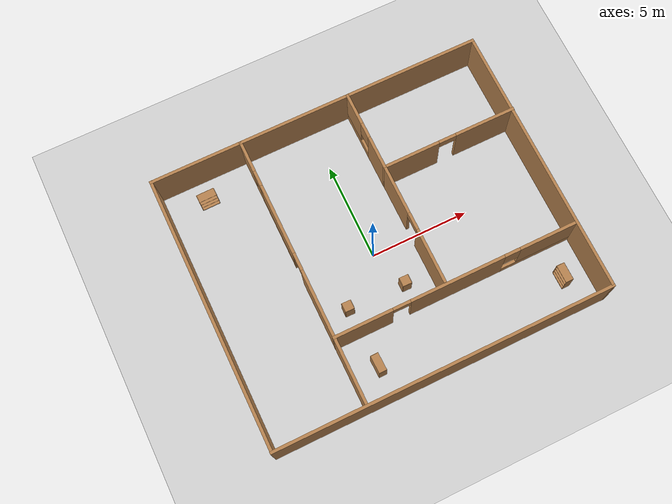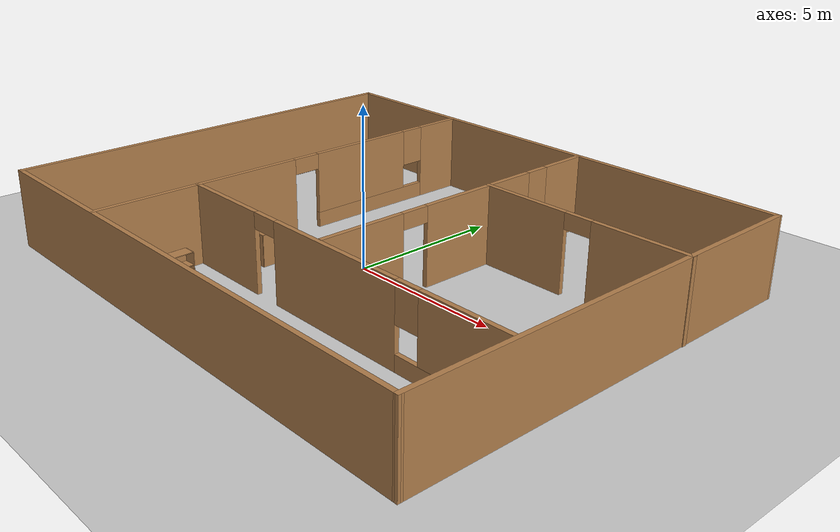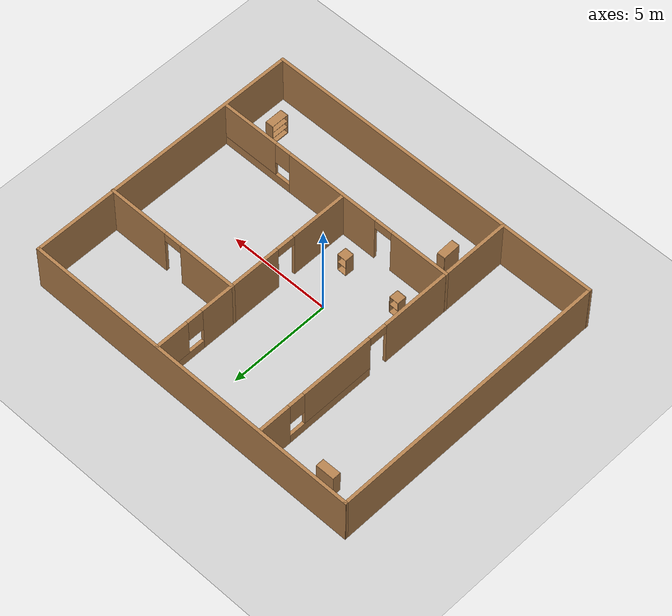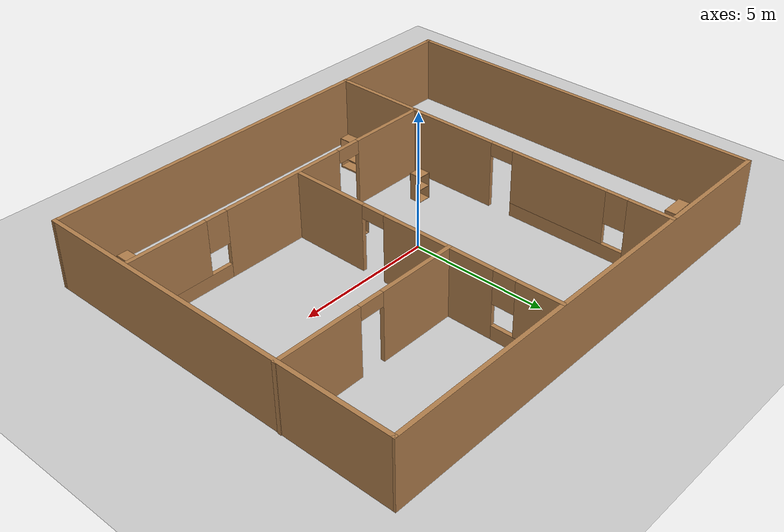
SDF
<sdf version="1.4">
 <world name="default">
  <light name="sun" type="directional">
   <pose>0 0 10 0 -0 0</pose>
   <diffuse>0.8 0.8 0.8 1</diffuse>
   <specular>0.2 0.2 0.2 1</specular>
   <attenuation>
    <range>1000</range>
    <constant>0.9</constant>
    <linear>0.01</linear>
    <quadratic>0.001</quadratic>
   </attenuation>
   <direction>-0.5 0.1 -0.9</direction>
   <spot><inner_angle>0</inner_angle><outer_angle>0</outer_angle><falloff>0</falloff></spot>
  </light>
  <model name="ground_plane">
   <static>1</static>
   <link name="link">
    <collision name="collision">
     <geometry><plane><normal>0 0 1</normal><size>100 100</size></plane></geometry>
     <surface>
      <contact><collide_bitmask>65535</collide_bitmask></contact>
      <friction><ode><mu>100</mu><mu2>50</mu2></ode></friction>
     </surface>
    </collision>
    <visual name="visual">
     <cast_shadows>0</cast_shadows>
     <geometry><plane><normal>0 0 1</normal><size>100 100</size></plane></geometry>
     <material>
      <script><uri>file://media/materials/scripts/gazebo.material</uri><name>Gazebo/Grey</name></script>
     </material>
    </visual>
   </link>
  </model>
  <gravity>0 0 -9.8</gravity>
  <magnetic_field>6e-06 2.3e-05 -4.2e-05</magnetic_field>
  <atmosphere type="adiabatic"/>
  <physics type="ode">
   <max_step_size>0.001</max_step_size>
   <real_time_factor>1</real_time_factor>
   <real_time_update_rate>1000</real_time_update_rate>
  </physics>
  <scene><ambient>0.4 0.4 0.4 1</ambient><background>0.7 0.7 0.7 1</background><shadows>1</shadows></scene>
  <spherical_coordinates>
   <surface_model>EARTH_WGS84</surface_model>
   <latitude_deg>0</latitude_deg>
   <longitude_deg>0</longitude_deg>
   <elevation>0</elevation>
   <heading_deg>0</heading_deg>
  </spherical_coordinates>
  <model name="Class">
   <pose>0.38162 0.217526 0 0 -0 0</pose>
   <link name="Wall_12">
    <collision name="Wall_12_Collision">
     <geometry><box><size>14 0.15 2.5</size></box></geometry>
     <pose>0 0 1.25 0 -0 0</pose>
    </collision>
    <visual name="Wall_12_Visual">
     <pose>0 0 1.25 0 -0 0</pose>
     <geometry><box><size>14 0.15 2.5</size></box></geometry>
     <material>
      <script><uri>file://media/materials/scripts/gazebo.material</uri><name>Gazebo/Wood</name></script>
      <ambient>1 1 1 1</ambient>
     </material>
     <meta><layer>0</layer></meta>
    </visual>
    <pose>-8.54112 0.004765 0 0 -0 -1.5708</pose>
   </link>
   <link name="Wall_14">
    <collision name="Wall_14_Collision">
     <geometry><box><size>17.2148 0.15 2.5</size></box></geometry>
     <pose>0 0 1.25 0 -0 0</pose>
    </collision>
    <visual name="Wall_14_Visual">
     <pose>0 0 1.25 0 -0 0</pose>
     <geometry><box><size>17.2148 0.15 2.5</size></box></geometry>
     <material>
      <script><uri>file://media/materials/scripts/gazebo.material</uri><name>Gazebo/Wood</name></script>
      <ambient>1 1 1 1</ambient>
     </material>
     <meta><layer>0</layer></meta>
    </visual>
    <pose>-0.008709 6.93559 0 0 -0 -0.000665</pose>
   </link>
   <link name="Wall_15">
    <collision name="Wall_15_Collision">
     <geometry><box><size>14.0096 0.15 2.5</size></box></geometry>
     <pose>0 0 1.25 0 -0 0</pose>
    </collision>
    <visual name="Wall_15_Visual">
     <pose>0 0 1.25 0 -0 0</pose>
     <geometry><box><size>14.0096 0.15 2.5</size></box></geometry>
     <material>
      <script><uri>file://media/materials/scripts/gazebo.material</uri><name>Gazebo/Wood</name></script>
      <ambient>1 1 1 1</ambient>
     </material>
     <meta><layer>0</layer></meta>
    </visual>
    <pose>8.53544 -0.011384 0 0 -0 -1.5691</pose>
   </link>
   <link name="Wall_16">
    <collision name="Wall_16_Collision">
     <geometry><box><size>17.25 0.15 2.5</size></box></geometry>
     <pose>0 0 1.25 0 -0 0</pose>
    </collision>
    <visual name="Wall_16_Visual">
     <pose>0 0 1.25 0 -0 0</pose>
     <geometry><box><size>17.25 0.15 2.5</size></box></geometry>
     <material>
      <script><uri>file://media/materials/scripts/gazebo.material</uri><name>Gazebo/Wood</name></script>
      <ambient>1 1 1 1</ambient>
     </material>
     <meta><layer>0</layer></meta>
    </visual>
    <pose>-0.00282 -6.94119 0 0 -0 3.14159</pose>
   </link>
   <link name="Wall_18">
    <pose>-3.93699 -0.002974 0 0 -0 -1.5708</pose>
    <visual name="Wall_18_Visual_0">
     <pose>-6.1651 0 1.25 0 -0 0</pose>
     <geometry><box><size>1.66979 0.15 2.5</size></box></geometry>
     <material>
      <script><uri>file://media/materials/scripts/gazebo.material</uri><name>Gazebo/Wood</name></script>
      <ambient>1 1 1 1</ambient>
     </material>
     <meta><layer>0</layer></meta>
    </visual>
    <collision name="Wall_18_Collision_0">
     <geometry><box><size>1.66979 0.15 2.5</size></box></geometry>
     <pose>-6.1651 0 1.25 0 -0 0</pose>
    </collision>
    <visual name="Wall_18_Visual_1">
     <pose>3.5267 0 1.25 0 -0 0</pose>
     <geometry><box><size>6.94661 0.15 2.5</size></box></geometry>
     <material>
      <script><uri>file://media/materials/scripts/gazebo.material</uri><name>Gazebo/Wood</name></script>
      <ambient>1 1 1 1</ambient>
     </material>
     <meta><layer>0</layer></meta>
    </visual>
    <collision name="Wall_18_Collision_1">
     <geometry><box><size>6.94661 0.15 2.5</size></box></geometry>
     <pose>3.5267 0 1.25 0 -0 0</pose>
    </collision>
    <visual name="Wall_18_Visual_2">
     <pose>-3.08841 0 0.25 0 -0 0</pose>
     <geometry><box><size>4.4836 0.15 0.5</size></box></geometry>
     <material>
      <script><uri>file://media/materials/scripts/gazebo.material</uri><name>Gazebo/Wood</name></script>
      <ambient>1 1 1 1</ambient>
     </material>
     <meta><layer>0</layer></meta>
    </visual>
    <collision name="Wall_18_Collision_2">
     <geometry><box><size>4.4836 0.15 0.5</size></box></geometry>
     <pose>-3.08841 0 0.25 0 -0 0</pose>
    </collision>
    <visual name="Wall_18_Visual_3">
     <pose>-2.68841 0 1.5 0 -0 0</pose>
     <geometry><box><size>3.6836 0.15 2</size></box></geometry>
     <material>
      <script><uri>file://media/materials/scripts/gazebo.material</uri><name>Gazebo/Wood</name></script>
      <ambient>1 1 1 1</ambient>
     </material>
     <meta><layer>0</layer></meta>
    </visual>
    <collision name="Wall_18_Collision_3">
     <geometry><box><size>3.6836 0.15 2</size></box></geometry>
     <pose>-2.68841 0 1.5 0 -0 0</pose>
    </collision>
    <visual name="Wall_18_Visual_4">
     <pose>-4.93021 0 1.9 0 -0 0</pose>
     <geometry><box><size>0.8 0.15 1.2</size></box></geometry>
     <material>
      <script><uri>file://media/materials/scripts/gazebo.material</uri><name>Gazebo/Wood</name></script>
      <ambient>1 1 1 1</ambient>
     </material>
     <meta><layer>0</layer></meta>
    </visual>
    <collision name="Wall_18_Collision_4">
     <geometry><box><size>0.8 0.15 1.2</size></box></geometry>
     <pose>-4.93021 0 1.9 0 -0 0</pose>
    </collision>
    <visual name="Wall_18_Visual_5">
     <pose>-0.39661 0 2.25 0 -0 0</pose>
     <geometry><box><size>0.9 0.15 0.5</size></box></geometry>
     <material>
      <script><uri>file://media/materials/scripts/gazebo.material</uri><name>Gazebo/Wood</name></script>
      <ambient>1 1 1 1</ambient>
     </material>
     <meta><layer>0</layer></meta>
    </visual>
    <collision name="Wall_18_Collision_5">
     <geometry><box><size>0.9 0.15 0.5</size></box></geometry>
     <pose>-0.39661 0 2.25 0 -0 0</pose>
    </collision>
   </link>
   <link name="Wall_20">
    <pose>5.12782 2.82354 0 0 -0 3.14159</pose>
    <visual name="Wall_20_Visual_0">
     <pose>-1.92806 0 1.25 0 -0 0</pose>
     <geometry><box><size>3.14389 0.15 2.5</size></box></geometry>
     <material>
      <script><uri>file://media/materials/scripts/gazebo.material</uri><name>Gazebo/Wood</name></script>
      <ambient>1 1 1 1</ambient>
     </material>
     <meta><layer>0</layer></meta>
    </visual>
    <collision name="Wall_20_Collision_0">
     <geometry><box><size>3.14389 0.15 2.5</size></box></geometry>
     <pose>-1.92806 0 1.25 0 -0 0</pose>
    </collision>
    <visual name="Wall_20_Visual_1">
     <pose>2.02194 0 1.25 0 -0 0</pose>
     <geometry><box><size>2.95611 0.15 2.5</size></box></geometry>
     <material>
      <script><uri>file://media/materials/scripts/gazebo.material</uri><name>Gazebo/Wood</name></script>
      <ambient>1 1 1 1</ambient>
     </material>
     <meta><layer>0</layer></meta>
    </visual>
    <collision name="Wall_20_Collision_1">
     <geometry><box><size>2.95611 0.15 2.5</size></box></geometry>
     <pose>2.02194 0 1.25 0 -0 0</pose>
    </collision>
    <visual name="Wall_20_Visual_2">
     <pose>0.093886 0 2.25 0 -0 0</pose>
     <geometry><box><size>0.9 0.15 0.5</size></box></geometry>
     <material>
      <script><uri>file://media/materials/scripts/gazebo.material</uri><name>Gazebo/Wood</name></script>
      <ambient>1 1 1 1</ambient>
     </material>
     <meta><layer>0</layer></meta>
    </visual>
    <collision name="Wall_20_Collision_2">
     <geometry><box><size>0.9 0.15 0.5</size></box></geometry>
     <pose>0.093886 0 2.25 0 -0 0</pose>
    </collision>
   </link>
   <link name="Wall_21">
    <pose>1.70282 4.87354 0 0 -0 1.5708</pose>
    <visual name="Wall_21_Visual_0">
     <pose>-1.24217 0 1.25 0 -0 0</pose>
     <geometry><box><size>1.76566 0.15 2.5</size></box></geometry>
     <material>
      <script><uri>file://media/materials/scripts/gazebo.material</uri><name>Gazebo/Wood</name></script>
      <ambient>1 1 1 1</ambient>
     </material>
     <meta><layer>0</layer></meta>
    </visual>
    <collision name="Wall_21_Collision_0">
     <geometry><box><size>1.76566 0.15 2.5</size></box></geometry>
     <pose>-1.24217 0 1.25 0 -0 0</pose>
    </collision>
    <visual name="Wall_21_Visual_1">
     <pose>0.882828 0 0.25 0 -0 0</pose>
     <geometry><box><size>2.48434 0.15 0.5</size></box></geometry>
     <material>
      <script><uri>file://media/materials/scripts/gazebo.material</uri><name>Gazebo/Wood</name></script>
      <ambient>1 1 1 1</ambient>
     </material>
     <meta><layer>0</layer></meta>
    </visual>
    <collision name="Wall_21_Collision_1">
     <geometry><box><size>2.48434 0.15 0.5</size></box></geometry>
     <pose>0.882828 0 0.25 0 -0 0</pose>
    </collision>
    <visual name="Wall_21_Visual_2">
     <pose>1.28283 0 1.5 0 -0 0</pose>
     <geometry><box><size>1.68434 0.15 2</size></box></geometry>
     <material>
      <script><uri>file://media/materials/scripts/gazebo.material</uri><name>Gazebo/Wood</name></script>
      <ambient>1 1 1 1</ambient>
     </material>
     <meta><layer>0</layer></meta>
    </visual>
    <collision name="Wall_21_Collision_2">
     <geometry><box><size>1.68434 0.15 2</size></box></geometry>
     <pose>1.28283 0 1.5 0 -0 0</pose>
    </collision>
    <visual name="Wall_21_Visual_3">
     <pose>0.040657 0 1.9 0 -0 0</pose>
     <geometry><box><size>0.8 0.15 1.2</size></box></geometry>
     <material>
      <script><uri>file://media/materials/scripts/gazebo.material</uri><name>Gazebo/Wood</name></script>
      <ambient>1 1 1 1</ambient>
     </material>
     <meta><layer>0</layer></meta>
    </visual>
    <collision name="Wall_21_Collision_3">
     <geometry><box><size>0.8 0.15 1.2</size></box></geometry>
     <pose>0.040657 0 1.9 0 -0 0</pose>
    </collision>
   </link>
   <link name="Wall_23">
    <pose>2.23129 -3.54651 0 0 -0 0</pose>
    <visual name="Wall_23_Visual_0">
     <pose>-4.74148 0 1.25 0 -0 0</pose>
     <geometry><box><size>3.01705 0.15 2.5</size></box></geometry>
     <material>
      <script><uri>file://media/materials/scripts/gazebo.material</uri><name>Gazebo/Wood</name></script>
      <ambient>1 1 1 1</ambient>
     </material>
     <meta><layer>0</layer></meta>
    </visual>
    <collision name="Wall_23_Collision_0">
     <geometry><box><size>3.01705 0.15 2.5</size></box></geometry>
     <pose>-4.74148 0 1.25 0 -0 0</pose>
    </collision>
    <visual name="Wall_23_Visual_1">
     <pose>0.091527 0 1.25 0 -0 0</pose>
     <geometry><box><size>4.84896 0.15 2.5</size></box></geometry>
     <material>
      <script><uri>file://media/materials/scripts/gazebo.material</uri><name>Gazebo/Wood</name></script>
      <ambient>1 1 1 1</ambient>
     </material>
     <meta><layer>0</layer></meta>
    </visual>
    <collision name="Wall_23_Collision_1">
     <geometry><box><size>4.84896 0.15 2.5</size></box></geometry>
     <pose>0.091527 0 1.25 0 -0 0</pose>
    </collision>
    <visual name="Wall_23_Visual_2">
     <pose>4.383 0 0.25 0 -0 0</pose>
     <geometry><box><size>3.73399 0.15 0.5</size></box></geometry>
     <material>
      <script><uri>file://media/materials/scripts/gazebo.material</uri><name>Gazebo/Wood</name></script>
      <ambient>1 1 1 1</ambient>
     </material>
     <meta><layer>0</layer></meta>
    </visual>
    <collision name="Wall_23_Collision_2">
     <geometry><box><size>3.73399 0.15 0.5</size></box></geometry>
     <pose>4.383 0 0.25 0 -0 0</pose>
    </collision>
    <visual name="Wall_23_Visual_3">
     <pose>4.783 0 1.5 0 -0 0</pose>
     <geometry><box><size>2.93399 0.15 2</size></box></geometry>
     <material>
      <script><uri>file://media/materials/scripts/gazebo.material</uri><name>Gazebo/Wood</name></script>
      <ambient>1 1 1 1</ambient>
     </material>
     <meta><layer>0</layer></meta>
    </visual>
    <collision name="Wall_23_Collision_3">
     <geometry><box><size>2.93399 0.15 2</size></box></geometry>
     <pose>4.783 0 1.5 0 -0 0</pose>
    </collision>
    <visual name="Wall_23_Visual_4">
     <pose>2.91601 0 1.9 0 -0 0</pose>
     <geometry><box><size>0.8 0.15 1.2</size></box></geometry>
     <material>
      <script><uri>file://media/materials/scripts/gazebo.material</uri><name>Gazebo/Wood</name></script>
      <ambient>1 1 1 1</ambient>
     </material>
     <meta><layer>0</layer></meta>
    </visual>
    <collision name="Wall_23_Collision_4">
     <geometry><box><size>0.8 0.15 1.2</size></box></geometry>
     <pose>2.91601 0 1.9 0 -0 0</pose>
    </collision>
    <visual name="Wall_23_Visual_5">
     <pose>-2.78295 0 2.25 0 -0 0</pose>
     <geometry><box><size>0.9 0.15 0.5</size></box></geometry>
     <material>
      <script><uri>file://media/materials/scripts/gazebo.material</uri><name>Gazebo/Wood</name></script>
      <ambient>1 1 1 1</ambient>
     </material>
     <meta><layer>0</layer></meta>
    </visual>
    <collision name="Wall_23_Collision_5">
     <geometry><box><size>0.9 0.15 0.5</size></box></geometry>
     <pose>-2.78295 0 2.25 0 -0 0</pose>
    </collision>
   </link>
   <static>1</static>
  </model>
  <model name="bookshelf">
   <static>1</static>
   <link name="link">
    <inertial><mass>1</mass></inertial>
    <collision name="back">
     <pose>0 0.005 0.6 0 -0 0</pose>
     <geometry><box><size>0.9 0.01 1.2</size></box></geometry>
    </collision>
    <visual name="visual1">
     <pose>0 0.005 0.6 0 -0 0</pose>
     <geometry><box><size>0.9 0.01 1.2</size></box></geometry>
     <material>
      <script><uri>file://media/materials/scripts/gazebo.material</uri><name>Gazebo/Wood</name></script>
     </material>
    </visual>
    <collision name="left_side">
     <pose>0.45 -0.195 0.6 0 -0 0</pose>
     <geometry><box><size>0.02 0.4 1.2</size></box></geometry>
    </collision>
    <visual name="visual2">
     <pose>0.45 -0.195 0.6 0 -0 0</pose>
     <geometry><box><size>0.02 0.4 1.2</size></box></geometry>
     <material>
      <script><uri>file://media/materials/scripts/gazebo.material</uri><name>Gazebo/Wood</name></script>
     </material>
    </visual>
    <collision name="right_side">
     <pose>-0.45 -0.195 0.6 0 -0 0</pose>
     <geometry><box><size>0.02 0.4 1.2</size></box></geometry>
    </collision>
    <visual name="visual3">
     <pose>-0.45 -0.195 0.6 0 -0 0</pose>
     <geometry><box><size>0.02 0.4 1.2</size></box></geometry>
     <material>
      <script><uri>file://media/materials/scripts/gazebo.material</uri><name>Gazebo/Wood</name></script>
     </material>
    </visual>
    <collision name="bottom">
     <pose>0 -0.195 0.03 0 -0 0</pose>
     <geometry><box><size>0.88 0.4 0.06</size></box></geometry>
    </collision>
    <visual name="visual4">
     <pose>0 -0.195 0.03 0 -0 0</pose>
     <geometry><box><size>0.88 0.4 0.06</size></box></geometry>
     <material>
      <script><uri>file://media/materials/scripts/gazebo.material</uri><name>Gazebo/Wood</name></script>
     </material>
    </visual>
    <collision name="top">
     <pose>0 -0.195 1.19 0 -0 0</pose>
     <geometry><box><size>0.88 0.4 0.02</size></box></geometry>
    </collision>
    <visual name="visual5">
     <pose>0 -0.195 1.19 0 -0 0</pose>
     <geometry><box><size>0.88 0.4 0.02</size></box></geometry>
     <material>
      <script><uri>file://media/materials/scripts/gazebo.material</uri><name>Gazebo/Wood</name></script>
     </material>
    </visual>
    <collision name="low_shelf">
     <pose>0 -0.195 0.43 0 -0 0</pose>
     <geometry><box><size>0.88 0.4 0.02</size></box></geometry>
    </collision>
    <visual name="visual6">
     <pose>0 -0.195 0.43 0 -0 0</pose>
     <geometry><box><size>0.88 0.4 0.02</size></box></geometry>
     <material>
      <script><uri>file://media/materials/scripts/gazebo.material</uri><name>Gazebo/Wood</name></script>
     </material>
    </visual>
    <collision name="high_shelf">
     <pose>0 -0.195 0.8 0 -0 0</pose>
     <geometry><box><size>0.88 0.4 0.02</size></box></geometry>
    </collision>
    <visual name="visual7">
     <pose>0 -0.195 0.8 0 -0 0</pose>
     <geometry><box><size>0.88 0.4 0.02</size></box></geometry>
     <material>
      <script><uri>file://media/materials/scripts/gazebo.material</uri><name>Gazebo/Wood</name></script>
     </material>
    </visual>
   </link>
   <pose>7.80146 -5.01939 0 0 0 -1.56483</pose>
  </model>
  <model name="bookshelf_clone">
   <static>1</static>
   <link name="link">
    <inertial><mass>1</mass></inertial>
    <collision name="back">
     <pose>0 0.005 0.6 0 -0 0</pose>
     <geometry><box><size>0.9 0.01 1.2</size></box></geometry>
    </collision>
    <visual name="visual1">
     <pose>0 0.005 0.6 0 -0 0</pose>
     <geometry><box><size>0.9 0.01 1.2</size></box></geometry>
     <material>
      <script><uri>file://media/materials/scripts/gazebo.material</uri><name>Gazebo/Wood</name></script>
     </material>
    </visual>
    <collision name="left_side">
     <pose>0.45 -0.195 0.6 0 -0 0</pose>
     <geometry><box><size>0.02 0.4 1.2</size></box></geometry>
    </collision>
    <visual name="visual2">
     <pose>0.45 -0.195 0.6 0 -0 0</pose>
     <geometry><box><size>0.02 0.4 1.2</size></box></geometry>
     <material>
      <script><uri>file://media/materials/scripts/gazebo.material</uri><name>Gazebo/Wood</name></script>
     </material>
    </visual>
    <collision name="right_side">
     <pose>-0.45 -0.195 0.6 0 -0 0</pose>
     <geometry><box><size>0.02 0.4 1.2</size></box></geometry>
    </collision>
    <visual name="visual3">
     <pose>-0.45 -0.195 0.6 0 -0 0</pose>
     <geometry><box><size>0.02 0.4 1.2</size></box></geometry>
     <material>
      <script><uri>file://media/materials/scripts/gazebo.material</uri><name>Gazebo/Wood</name></script>
     </material>
    </visual>
    <collision name="bottom">
     <pose>0 -0.195 0.03 0 -0 0</pose>
     <geometry><box><size>0.88 0.4 0.06</size></box></geometry>
    </collision>
    <visual name="visual4">
     <pose>0 -0.195 0.03 0 -0 0</pose>
     <geometry><box><size>0.88 0.4 0.06</size></box></geometry>
     <material>
      <script><uri>file://media/materials/scripts/gazebo.material</uri><name>Gazebo/Wood</name></script>
     </material>
    </visual>
    <collision name="top">
     <pose>0 -0.195 1.19 0 -0 0</pose>
     <geometry><box><size>0.88 0.4 0.02</size></box></geometry>
    </collision>
    <visual name="visual5">
     <pose>0 -0.195 1.19 0 -0 0</pose>
     <geometry><box><size>0.88 0.4 0.02</size></box></geometry>
     <material>
      <script><uri>file://media/materials/scripts/gazebo.material</uri><name>Gazebo/Wood</name></script>
     </material>
    </visual>
    <collision name="low_shelf">
     <pose>0 -0.195 0.43 0 -0 0</pose>
     <geometry><box><size>0.88 0.4 0.02</size></box></geometry>
    </collision>
    <visual name="visual6">
     <pose>0 -0.195 0.43 0 -0 0</pose>
     <geometry><box><size>0.88 0.4 0.02</size></box></geometry>
     <material>
      <script><uri>file://media/materials/scripts/gazebo.material</uri><name>Gazebo/Wood</name></script>
     </material>
    </visual>
    <collision name="high_shelf">
     <pose>0 -0.195 0.8 0 -0 0</pose>
     <geometry><box><size>0.88 0.4 0.02</size></box></geometry>
    </collision>
    <visual name="visual7">
     <pose>0 -0.195 0.8 0 -0 0</pose>
     <geometry><box><size>0.88 0.4 0.02</size></box></geometry>
     <material>
      <script><uri>file://media/materials/scripts/gazebo.material</uri><name>Gazebo/Wood</name></script>
     </material>
    </visual>
   </link>
   <pose>-2.36726 -5.03398 0 0 -0 1.59585</pose>
  </model>
  <model name="bookshelf_clone_clone">
   <static>1</static>
   <link name="link">
    <inertial><mass>1</mass></inertial>
    <collision name="back">
     <pose>0 0.005 0.6 0 -0 0</pose>
     <geometry><box><size>0.9 0.01 1.2</size></box></geometry>
    </collision>
    <visual name="visual1">
     <pose>0 0.005 0.6 0 -0 0</pose>
     <geometry><box><size>0.9 0.01 1.2</size></box></geometry>
     <material>
      <script><uri>file://media/materials/scripts/gazebo.material</uri><name>Gazebo/Wood</name></script>
     </material>
    </visual>
    <collision name="left_side">
     <pose>0.45 -0.195 0.6 0 -0 0</pose>
     <geometry><box><size>0.02 0.4 1.2</size></box></geometry>
    </collision>
    <visual name="visual2">
     <pose>0.45 -0.195 0.6 0 -0 0</pose>
     <geometry><box><size>0.02 0.4 1.2</size></box></geometry>
     <material>
      <script><uri>file://media/materials/scripts/gazebo.material</uri><name>Gazebo/Wood</name></script>
     </material>
    </visual>
    <collision name="right_side">
     <pose>-0.45 -0.195 0.6 0 -0 0</pose>
     <geometry><box><size>0.02 0.4 1.2</size></box></geometry>
    </collision>
    <visual name="visual3">
     <pose>-0.45 -0.195 0.6 0 -0 0</pose>
     <geometry><box><size>0.02 0.4 1.2</size></box></geometry>
     <material>
      <script><uri>file://media/materials/scripts/gazebo.material</uri><name>Gazebo/Wood</name></script>
     </material>
    </visual>
    <collision name="bottom">
     <pose>0 -0.195 0.03 0 -0 0</pose>
     <geometry><box><size>0.88 0.4 0.06</size></box></geometry>
    </collision>
    <visual name="visual4">
     <pose>0 -0.195 0.03 0 -0 0</pose>
     <geometry><box><size>0.88 0.4 0.06</size></box></geometry>
     <material>
      <script><uri>file://media/materials/scripts/gazebo.material</uri><name>Gazebo/Wood</name></script>
     </material>
    </visual>
    <collision name="top">
     <pose>0 -0.195 1.19 0 -0 0</pose>
     <geometry><box><size>0.88 0.4 0.02</size></box></geometry>
    </collision>
    <visual name="visual5">
     <pose>0 -0.195 1.19 0 -0 0</pose>
     <geometry><box><size>0.88 0.4 0.02</size></box></geometry>
     <material>
      <script><uri>file://media/materials/scripts/gazebo.material</uri><name>Gazebo/Wood</name></script>
     </material>
    </visual>
    <collision name="low_shelf">
     <pose>0 -0.195 0.43 0 -0 0</pose>
     <geometry><box><size>0.88 0.4 0.02</size></box></geometry>
    </collision>
    <visual name="visual6">
     <pose>0 -0.195 0.43 0 -0 0</pose>
     <geometry><box><size>0.88 0.4 0.02</size></box></geometry>
     <material>
      <script><uri>file://media/materials/scripts/gazebo.material</uri><name>Gazebo/Wood</name></script>
     </material>
    </visual>
    <collision name="high_shelf">
     <pose>0 -0.195 0.8 0 -0 0</pose>
     <geometry><box><size>0.88 0.4 0.02</size></box></geometry>
    </collision>
    <visual name="visual7">
     <pose>0 -0.195 0.8 0 -0 0</pose>
     <geometry><box><size>0.88 0.4 0.02</size></box></geometry>
     <material>
      <script><uri>file://media/materials/scripts/gazebo.material</uri><name>Gazebo/Wood</name></script>
     </material>
    </visual>
   </link>
   <pose>-6.07283 6.13619 0 0 -0 0.011352</pose>
  </model>
  <model name="Untitled">
   <pose>1.08381 -0.1235 0 0 -0 0</pose>
   <link name="Wall_3">
    <pose>1.0075 0 0 0 -0 1.5708</pose>
    <visual name="Wall_3_Visual_0">
     <pose>-1.70539 0 1.25 0 -0 0</pose>
     <geometry><box><size>2.83921 0.15 2.5</size></box></geometry>
     <material>
      <script><uri>file://media/materials/scripts/gazebo.material</uri><name>Gazebo/Wood</name></script>
      <ambient>1 1 1 1</ambient>
     </material>
     <meta><layer>0</layer></meta>
    </visual>
    <collision name="Wall_3_Collision_0">
     <geometry><box><size>2.83921 0.15 2.5</size></box></geometry>
     <pose>-1.70539 0 1.25 0 -0 0</pose>
    </collision>
    <visual name="Wall_3_Visual_1">
     <pose>1.86961 0 1.25 0 -0 0</pose>
     <geometry><box><size>2.51079 0.15 2.5</size></box></geometry>
     <material>
      <script><uri>file://media/materials/scripts/gazebo.material</uri><name>Gazebo/Wood</name></script>
      <ambient>1 1 1 1</ambient>
     </material>
     <meta><layer>0</layer></meta>
    </visual>
    <collision name="Wall_3_Collision_1">
     <geometry><box><size>2.51079 0.15 2.5</size></box></geometry>
     <pose>1.86961 0 1.25 0 -0 0</pose>
    </collision>
    <visual name="Wall_3_Visual_2">
     <pose>0.164212 0 2.25 0 -0 0</pose>
     <geometry><box><size>0.9 0.15 0.5</size></box></geometry>
     <material>
      <script><uri>file://media/materials/scripts/gazebo.material</uri><name>Gazebo/Wood</name></script>
      <ambient>1 1 1 1</ambient>
     </material>
     <meta><layer>0</layer></meta>
    </visual>
    <collision name="Wall_3_Collision_2">
     <geometry><box><size>0.9 0.15 0.5</size></box></geometry>
     <pose>0.164212 0 2.25 0 -0 0</pose>
    </collision>
   </link>
   <static>1</static>
  </model>
  <model name="cabinet">
   <static>1</static>
   <link name="cabinet_bottom_plate">
    <inertial>
     <pose>0 0 -1 0 -0 0</pose>
     <inertia><ixx>2.05</ixx><ixy>0</ixy><ixz>0</ixz><iyy>2.05</iyy><iyz>0</iyz><izz>2.05</izz></inertia>
     <mass>25</mass>
    </inertial>
    <collision name="cabinet_bottom_plate_geom">
     <pose>0 0 0.01 0 -0 0</pose>
     <geometry><box><size>0.45 0.45 0.02</size></box></geometry>
    </collision>
    <visual name="cabinet_bottom_plate_geom_visual">
     <pose>0 0 0.01 0 -0 0</pose>
     <geometry><box><size>0.45 0.45 0.02</size></box></geometry>
     <material>
      <script><uri>file://media/materials/scripts/gazebo.material</uri><name>Gazebo/Wood</name></script>
     </material>
    </visual>
    <collision name="cabinet_bottom_plate_geom_cabinet_back_plate">
     <pose>0.235 0 0.51 0 -0 0</pose>
     <geometry><box><size>0.02 0.45 1.02</size></box></geometry>
    </collision>
    <visual name="cabinet_bottom_plate_geom_cabinet_back_plate_visual">
     <pose>0.235 0 0.51 0 -0 0</pose>
     <geometry><box><size>0.02 0.45 1.02</size></box></geometry>
     <material>
      <script><uri>file://media/materials/scripts/gazebo.material</uri><name>Gazebo/Wood</name></script>
     </material>
    </visual>
    <collision name="cabinet_bottom_plate_geom_cabinet_left_plate">
     <pose>0 0.235 0.51 0 -0 0</pose>
     <geometry><box><size>0.45 0.02 1.02</size></box></geometry>
    </collision>
    <visual name="cabinet_bottom_plate_geom_cabinet_left_plate_visual">
     <pose>0 0.235 0.51 0 -0 0</pose>
     <geometry><box><size>0.45 0.02 1.02</size></box></geometry>
     <material>
      <script><uri>file://media/materials/scripts/gazebo.material</uri><name>Gazebo/Wood</name></script>
     </material>
    </visual>
    <collision name="cabinet_bottom_plate_geom_cabinet_middle_plate">
     <pose>0 0 0.51 0 -0 0</pose>
     <geometry><box><size>0.45 0.45 0.02</size></box></geometry>
    </collision>
    <visual name="cabinet_bottom_plate_geom_cabinet_middle_plate_visual">
     <pose>0 0 0.51 0 -0 0</pose>
     <geometry><box><size>0.45 0.45 0.02</size></box></geometry>
     <material>
      <script><uri>file://media/materials/scripts/gazebo.material</uri><name>Gazebo/Wood</name></script>
     </material>
    </visual>
    <collision name="cabinet_bottom_plate_geom_cabinet_right_plate">
     <pose>0 -0.235 0.51 0 -0 0</pose>
     <geometry><box><size>0.45 0.02 1.02</size></box></geometry>
    </collision>
    <visual name="cabinet_bottom_plate_geom_cabinet_right_plate_visual">
     <pose>0 -0.235 0.51 0 -0 0</pose>
     <geometry><box><size>0.45 0.02 1.02</size></box></geometry>
     <material>
      <script><uri>file://media/materials/scripts/gazebo.material</uri><name>Gazebo/Wood</name></script>
     </material>
    </visual>
    <collision name="cabinet_bottom_plate_geom_cabinet_top_plate">
     <pose>0 0 1.01 0 -0 0</pose>
     <geometry><box><size>0.45 0.45 0.02</size></box></geometry>
    </collision>
    <visual name="cabinet_bottom_plate_geom_cabinet_top_plate_visual">
     <pose>0 0 1.01 0 -0 0</pose>
     <geometry><box><size>0.45 0.45 0.02</size></box></geometry>
     <material>
      <script><uri>file://media/materials/scripts/gazebo.material</uri><name>Gazebo/Wood</name></script>
     </material>
    </visual>
   </link>
   <pose>-2.27195 -1.95126 0 0 0 -1.58931</pose>
  </model>
  <model name="cabinet_clone">
   <static>1</static>
   <link name="cabinet_bottom_plate">
    <inertial>
     <pose>0 0 -1 0 -0 0</pose>
     <inertia><ixx>2.05</ixx><ixy>0</ixy><ixz>0</ixz><iyy>2.05</iyy><iyz>0</iyz><izz>2.05</izz></inertia>
     <mass>25</mass>
    </inertial>
    <collision name="cabinet_bottom_plate_geom">
     <pose>0 0 0.01 0 -0 0</pose>
     <geometry><box><size>0.45 0.45 0.02</size></box></geometry>
    </collision>
    <visual name="cabinet_bottom_plate_geom_visual">
     <pose>0 0 0.01 0 -0 0</pose>
     <geometry><box><size>0.45 0.45 0.02</size></box></geometry>
     <material>
      <script><uri>file://media/materials/scripts/gazebo.material</uri><name>Gazebo/Wood</name></script>
     </material>
    </visual>
    <collision name="cabinet_bottom_plate_geom_cabinet_back_plate">
     <pose>0.235 0 0.51 0 -0 0</pose>
     <geometry><box><size>0.02 0.45 1.02</size></box></geometry>
    </collision>
    <visual name="cabinet_bottom_plate_geom_cabinet_back_plate_visual">
     <pose>0.235 0 0.51 0 -0 0</pose>
     <geometry><box><size>0.02 0.45 1.02</size></box></geometry>
     <material>
      <script><uri>file://media/materials/scripts/gazebo.material</uri><name>Gazebo/Wood</name></script>
     </material>
    </visual>
    <collision name="cabinet_bottom_plate_geom_cabinet_left_plate">
     <pose>0 0.235 0.51 0 -0 0</pose>
     <geometry><box><size>0.45 0.02 1.02</size></box></geometry>
    </collision>
    <visual name="cabinet_bottom_plate_geom_cabinet_left_plate_visual">
     <pose>0 0.235 0.51 0 -0 0</pose>
     <geometry><box><size>0.45 0.02 1.02</size></box></geometry>
     <material>
      <script><uri>file://media/materials/scripts/gazebo.material</uri><name>Gazebo/Wood</name></script>
     </material>
    </visual>
    <collision name="cabinet_bottom_plate_geom_cabinet_middle_plate">
     <pose>0 0 0.51 0 -0 0</pose>
     <geometry><box><size>0.45 0.45 0.02</size></box></geometry>
    </collision>
    <visual name="cabinet_bottom_plate_geom_cabinet_middle_plate_visual">
     <pose>0 0 0.51 0 -0 0</pose>
     <geometry><box><size>0.45 0.45 0.02</size></box></geometry>
     <material>
      <script><uri>file://media/materials/scripts/gazebo.material</uri><name>Gazebo/Wood</name></script>
     </material>
    </visual>
    <collision name="cabinet_bottom_plate_geom_cabinet_right_plate">
     <pose>0 -0.235 0.51 0 -0 0</pose>
     <geometry><box><size>0.45 0.02 1.02</size></box></geometry>
    </collision>
    <visual name="cabinet_bottom_plate_geom_cabinet_right_plate_visual">
     <pose>0 -0.235 0.51 0 -0 0</pose>
     <geometry><box><size>0.45 0.02 1.02</size></box></geometry>
     <material>
      <script><uri>file://media/materials/scripts/gazebo.material</uri><name>Gazebo/Wood</name></script>
     </material>
    </visual>
    <collision name="cabinet_bottom_plate_geom_cabinet_top_plate">
     <pose>0 0 1.01 0 -0 0</pose>
     <geometry><box><size>0.45 0.45 0.02</size></box></geometry>
    </collision>
    <visual name="cabinet_bottom_plate_geom_cabinet_top_plate_visual">
     <pose>0 0 1.01 0 -0 0</pose>
     <geometry><box><size>0.45 0.45 0.02</size></box></geometry>
     <material>
      <script><uri>file://media/materials/scripts/gazebo.material</uri><name>Gazebo/Wood</name></script>
     </material>
    </visual>
   </link>
   <pose>0.700152 -2.01976 0 0 0 -1.58931</pose>
  </model>
 </world>
</sdf>
